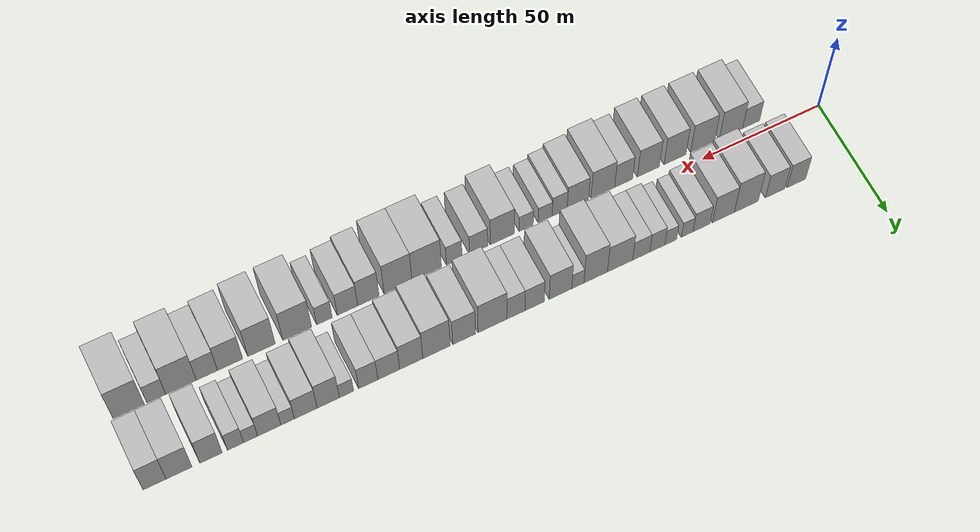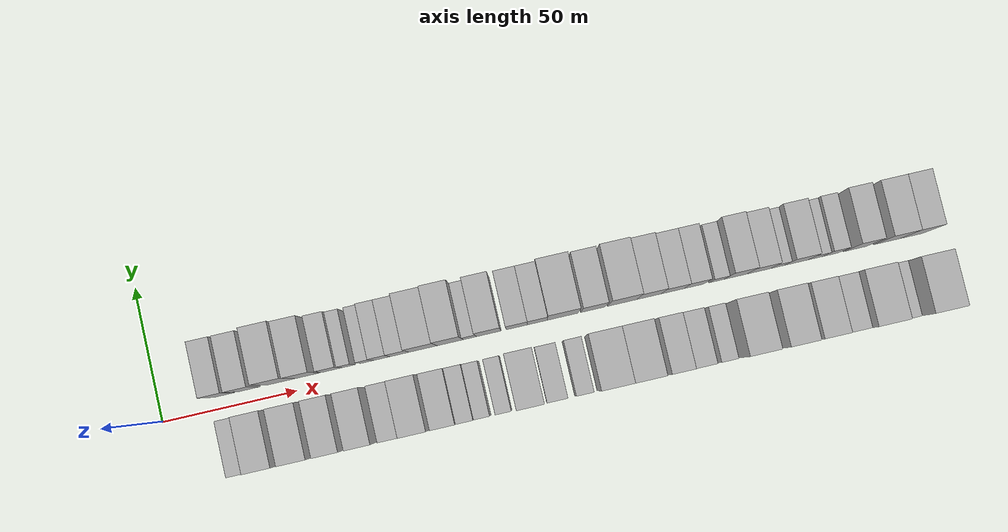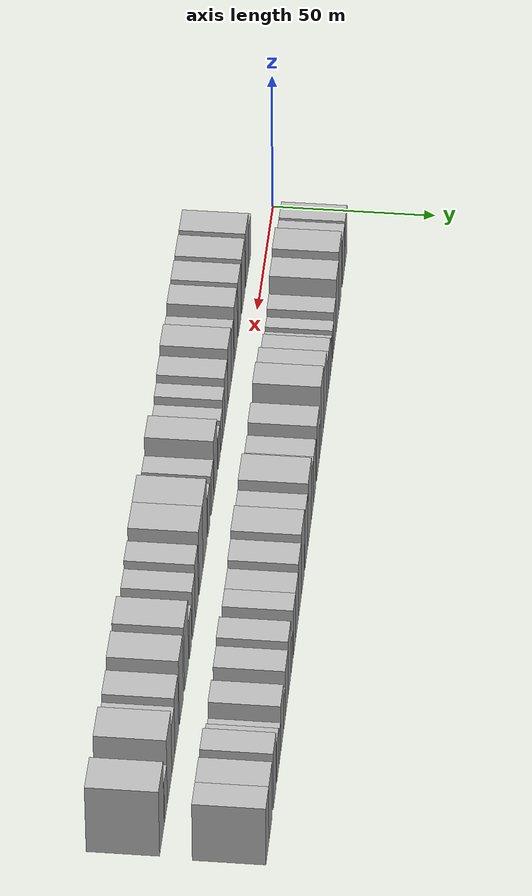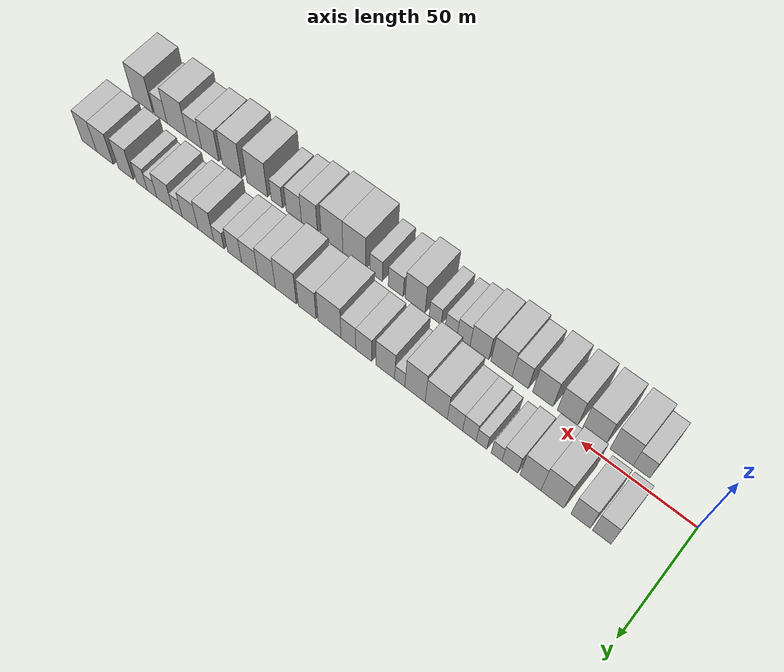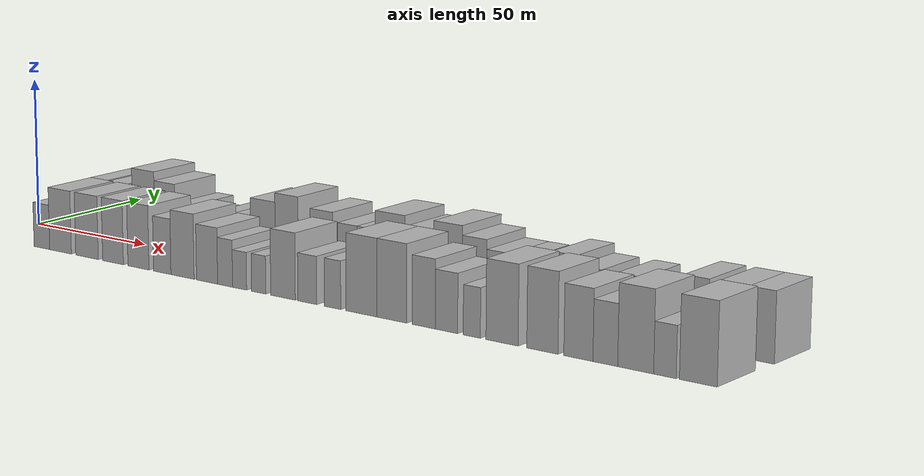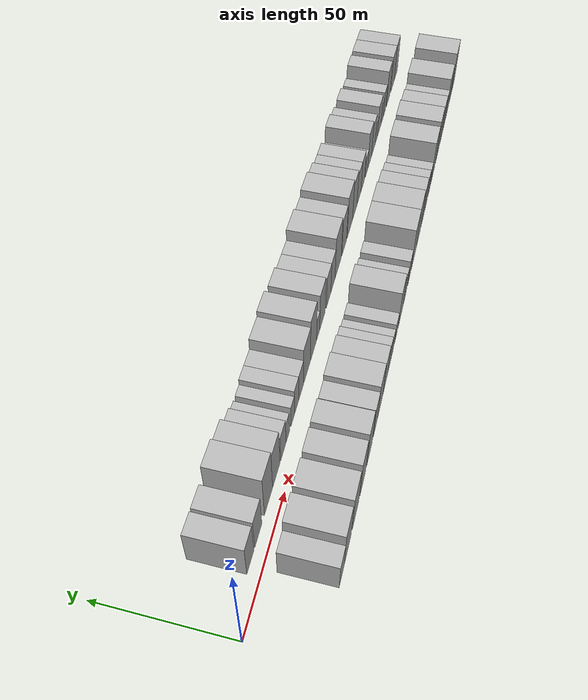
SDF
<sdf version="1.6">
 <world name="default">
  <scene>
   <sky><clouds><speed>12</speed></clouds></sky>
   <ambient>0.4 0.4 0.4 1</ambient>
   <background>0.7 0.7 0.7 1</background>
   <shadows>1</shadows>
  </scene>
  <gravity>0 0 -9.8066</gravity>
  <magnetic_field>6e-06 2.3e-05 -4.2e-05</magnetic_field>
  <physics default="0" name="default_physics" type="ode">
   <ode>
    <solver>
     <type>quick</type>
     <iters>10</iters>
     <sor>1.0</sor>
     <use_dynamic_moi_rescaling>0</use_dynamic_moi_rescaling>
    </solver>
    <constraints>
     <cfm>0</cfm>
     <erp>0.2</erp>
     <contact_max_correcting_vel>100</contact_max_correcting_vel>
     <contact_surface_layer>0.001</contact_surface_layer>
    </constraints>
   </ode>
   <max_step_size>0.004</max_step_size>
   <real_time_factor>1</real_time_factor>
   <real_time_update_rate>250</real_time_update_rate>
  </physics>
  <light name="sun" type="directional">
   <pose>0 0 10 0 0 0</pose>
   <diffuse>0.8 0.8 0.8 1</diffuse>
   <specular>0.2 0.2 0.2 1</specular>
   <attenuation>
    <range>1000</range>
    <constant>0.9</constant>
    <linear>0.01</linear>
    <quadratic>0.001</quadratic>
   </attenuation>
   <direction>-0.5 0.1 -0.9</direction>
  </light>
  <model name="building_1">
   <static>1</static>
   <pose>23.9567 14.5000 0 0.000000 0.000000 1.570796</pose>
   <link name="link">
    <pose>0 0 9.00 0 0 0</pose>
    <collision name="collision"><geometry><box><size>20.0000 7.9134 18.0000</size></box></geometry></collision>
    <visual name="visual">
     <cast_shadows>0</cast_shadows>
     <geometry><box><size>20.0000 7.9134 18.0000</size></box></geometry>
     <material>
      <script>
       <uri>model://HANNAS_wall/materials/scripts</uri>
       <uri>model://HANNAS_wall/materials/textures</uri>
       <name>vrc/HANNAS_wall</name>
      </script>
     </material>
    </visual>
   </link>
  </model>
  <model name="building_2">
   <static>1</static>
   <pose>33.0649 14.5000 0 0.000000 0.000000 1.570796</pose>
   <link name="link">
    <pose>0 0 9.00 0 0 0</pose>
    <collision name="collision"><geometry><box><size>20.0000 8.3031 18.0000</size></box></geometry></collision>
    <visual name="visual">
     <cast_shadows>0</cast_shadows>
     <geometry><box><size>20.0000 8.3031 18.0000</size></box></geometry>
     <material>
      <script>
       <uri>model://HANNAS_wall/materials/scripts</uri>
       <uri>model://HANNAS_wall/materials/textures</uri>
       <name>vrc/HANNAS_wall</name>
      </script>
     </material>
    </visual>
   </link>
  </model>
  <model name="building_3">
   <static>1</static>
   <pose>45.2926 14.5000 0 0.000000 0.000000 1.570796</pose>
   <link name="link">
    <pose>0 0 12.00 0 0 0</pose>
    <collision name="collision"><geometry><box><size>20.0000 10.1522 24.0000</size></box></geometry></collision>
    <visual name="visual">
     <cast_shadows>0</cast_shadows>
     <geometry><box><size>20.0000 10.1522 24.0000</size></box></geometry>
     <material>
      <script>
       <uri>model://HANNAS_wall/materials/scripts</uri>
       <uri>model://HANNAS_wall/materials/textures</uri>
       <name>vrc/HANNAS_wall</name>
      </script>
     </material>
    </visual>
   </link>
  </model>
  <model name="building_4">
   <static>1</static>
   <pose>55.0081 14.5000 0 0.000000 0.000000 1.570796</pose>
   <link name="link">
    <pose>0 0 10.50 0 0 0</pose>
    <collision name="collision"><geometry><box><size>20.0000 9.2788 21.0000</size></box></geometry></collision>
    <visual name="visual">
     <cast_shadows>0</cast_shadows>
     <geometry><box><size>20.0000 9.2788 21.0000</size></box></geometry>
     <material>
      <script>
       <uri>model://HANNAS_wall/materials/scripts</uri>
       <uri>model://HANNAS_wall/materials/textures</uri>
       <name>vrc/HANNAS_wall</name>
      </script>
     </material>
    </visual>
   </link>
  </model>
  <model name="building_5">
   <static>1</static>
   <pose>64.2065 14.5000 0 0.000000 0.000000 1.570796</pose>
   <link name="link">
    <pose>0 0 7.50 0 0 0</pose>
    <collision name="collision"><geometry><box><size>20.0000 7.1180 15.0000</size></box></geometry></collision>
    <visual name="visual">
     <cast_shadows>0</cast_shadows>
     <geometry><box><size>20.0000 7.1180 15.0000</size></box></geometry>
     <material>
      <script>
       <uri>model://HANNAS_wall/materials/scripts</uri>
       <uri>model://HANNAS_wall/materials/textures</uri>
       <name>vrc/HANNAS_wall</name>
      </script>
     </material>
    </visual>
   </link>
  </model>
  <model name="building_6">
   <static>1</static>
   <pose>70.2056 14.5000 0 0.000000 0.000000 1.570796</pose>
   <link name="link">
    <pose>0 0 6.00 0 0 0</pose>
    <collision name="collision"><geometry><box><size>20.0000 4.8802 12.0000</size></box></geometry></collision>
    <visual name="visual">
     <cast_shadows>0</cast_shadows>
     <geometry><box><size>20.0000 4.8802 12.0000</size></box></geometry>
     <material>
      <script>
       <uri>model://HANNAS_wall/materials/scripts</uri>
       <uri>model://HANNAS_wall/materials/textures</uri>
       <name>vrc/HANNAS_wall</name>
      </script>
     </material>
    </visual>
   </link>
  </model>
  <model name="building_7">
   <static>1</static>
   <pose>77.0890 14.5000 0 0.000000 0.000000 1.570796</pose>
   <link name="link">
    <pose>0 0 6.00 0 0 0</pose>
    <collision name="collision"><geometry><box><size>20.0000 4.8866 12.0000</size></box></geometry></collision>
    <visual name="visual">
     <cast_shadows>0</cast_shadows>
     <geometry><box><size>20.0000 4.8866 12.0000</size></box></geometry>
     <material>
      <script>
       <uri>model://HANNAS_wall/materials/scripts</uri>
       <uri>model://HANNAS_wall/materials/textures</uri>
       <name>vrc/HANNAS_wall</name>
      </script>
     </material>
    </visual>
   </link>
  </model>
  <model name="building_8">
   <static>1</static>
   <pose>82.6566 14.5000 0 0.000000 0.000000 1.570796</pose>
   <link name="link">
    <pose>0 0 7.50 0 0 0</pose>
    <collision name="collision"><geometry><box><size>20.0000 6.2487 15.0000</size></box></geometry></collision>
    <visual name="visual">
     <cast_shadows>0</cast_shadows>
     <geometry><box><size>20.0000 6.2487 15.0000</size></box></geometry>
     <material>
      <script>
       <uri>model://HANNAS_wall/materials/scripts</uri>
       <uri>model://HANNAS_wall/materials/textures</uri>
       <name>vrc/HANNAS_wall</name>
      </script>
     </material>
    </visual>
   </link>
  </model>
  <model name="building_9">
   <static>1</static>
   <pose>89.3474 14.5000 0 0.000000 0.000000 1.570796</pose>
   <link name="link">
    <pose>0 0 7.50 0 0 0</pose>
    <collision name="collision"><geometry><box><size>20.0000 7.1328 15.0000</size></box></geometry></collision>
    <visual name="visual">
     <cast_shadows>0</cast_shadows>
     <geometry><box><size>20.0000 7.1328 15.0000</size></box></geometry>
     <material>
      <script>
       <uri>model://HANNAS_wall/materials/scripts</uri>
       <uri>model://HANNAS_wall/materials/textures</uri>
       <name>vrc/HANNAS_wall</name>
      </script>
     </material>
    </visual>
   </link>
  </model>
  <model name="building_10">
   <static>1</static>
   <pose>98.1227 14.5000 0 0.000000 0.000000 1.570796</pose>
   <link name="link">
    <pose>0 0 10.50 0 0 0</pose>
    <collision name="collision"><geometry><box><size>20.0000 10.4180 21.0000</size></box></geometry></collision>
    <visual name="visual">
     <cast_shadows>0</cast_shadows>
     <geometry><box><size>20.0000 10.4180 21.0000</size></box></geometry>
     <material>
      <script>
       <uri>model://HANNAS_wall/materials/scripts</uri>
       <uri>model://HANNAS_wall/materials/textures</uri>
       <name>vrc/HANNAS_wall</name>
      </script>
     </material>
    </visual>
   </link>
  </model>
  <model name="building_11">
   <static>1</static>
   <pose>108.1672 14.5000 0 0.000000 0.000000 1.570796</pose>
   <link name="link">
    <pose>0 0 12.00 0 0 0</pose>
    <collision name="collision"><geometry><box><size>20.0000 9.6710 24.0000</size></box></geometry></collision>
    <visual name="visual">
     <cast_shadows>0</cast_shadows>
     <geometry><box><size>20.0000 9.6710 24.0000</size></box></geometry>
     <material>
      <script>
       <uri>model://HANNAS_wall/materials/scripts</uri>
       <uri>model://HANNAS_wall/materials/textures</uri>
       <name>vrc/HANNAS_wall</name>
      </script>
     </material>
    </visual>
   </link>
  </model>
  <model name="building_12">
   <static>1</static>
   <pose>115.4831 14.5000 0 0.000000 0.000000 1.570796</pose>
   <link name="link">
    <pose>0 0 6.00 0 0 0</pose>
    <collision name="collision"><geometry><box><size>20.0000 4.9609 12.0000</size></box></geometry></collision>
    <visual name="visual">
     <cast_shadows>0</cast_shadows>
     <geometry><box><size>20.0000 4.9609 12.0000</size></box></geometry>
     <material>
      <script>
       <uri>model://HANNAS_wall/materials/scripts</uri>
       <uri>model://HANNAS_wall/materials/textures</uri>
       <name>vrc/HANNAS_wall</name>
      </script>
     </material>
    </visual>
   </link>
  </model>
  <model name="building_13">
   <static>1</static>
   <pose>122.5695 14.5000 0 0.000000 0.000000 1.570796</pose>
   <link name="link">
    <pose>0 0 10.50 0 0 0</pose>
    <collision name="collision"><geometry><box><size>20.0000 9.2118 21.0000</size></box></geometry></collision>
    <visual name="visual">
     <cast_shadows>0</cast_shadows>
     <geometry><box><size>20.0000 9.2118 21.0000</size></box></geometry>
     <material>
      <script>
       <uri>model://HANNAS_wall/materials/scripts</uri>
       <uri>model://HANNAS_wall/materials/textures</uri>
       <name>vrc/HANNAS_wall</name>
      </script>
     </material>
    </visual>
   </link>
  </model>
  <model name="building_14">
   <static>1</static>
   <pose>133.0898 14.5000 0 0.000000 0.000000 1.570796</pose>
   <link name="link">
    <pose>0 0 9.00 0 0 0</pose>
    <collision name="collision"><geometry><box><size>20.0000 7.8289 18.0000</size></box></geometry></collision>
    <visual name="visual">
     <cast_shadows>0</cast_shadows>
     <geometry><box><size>20.0000 7.8289 18.0000</size></box></geometry>
     <material>
      <script>
       <uri>model://HANNAS_wall/materials/scripts</uri>
       <uri>model://HANNAS_wall/materials/textures</uri>
       <name>vrc/HANNAS_wall</name>
      </script>
     </material>
    </visual>
   </link>
  </model>
  <model name="building_15">
   <static>1</static>
   <pose>140.6729 14.5000 0 0.000000 0.000000 1.570796</pose>
   <link name="link">
    <pose>0 0 9.00 0 0 0</pose>
    <collision name="collision"><geometry><box><size>20.0000 7.3372 18.0000</size></box></geometry></collision>
    <visual name="visual">
     <cast_shadows>0</cast_shadows>
     <geometry><box><size>20.0000 7.3372 18.0000</size></box></geometry>
     <material>
      <script>
       <uri>model://HANNAS_wall/materials/scripts</uri>
       <uri>model://HANNAS_wall/materials/textures</uri>
       <name>vrc/HANNAS_wall</name>
      </script>
     </material>
    </visual>
   </link>
  </model>
  <model name="building_16">
   <static>1</static>
   <pose>150.1313 14.5000 0 0.000000 0.000000 1.570796</pose>
   <link name="link">
    <pose>0 0 12.00 0 0 0</pose>
    <collision name="collision"><geometry><box><size>20.0000 11.5796 24.0000</size></box></geometry></collision>
    <visual name="visual">
     <cast_shadows>0</cast_shadows>
     <geometry><box><size>20.0000 11.5796 24.0000</size></box></geometry>
     <material>
      <script>
       <uri>model://HANNAS_wall/materials/scripts</uri>
       <uri>model://HANNAS_wall/materials/textures</uri>
       <name>vrc/HANNAS_wall</name>
      </script>
     </material>
    </visual>
   </link>
  </model>
  <model name="building_17">
   <static>1</static>
   <pose>161.4761 14.5000 0 0.000000 0.000000 1.570796</pose>
   <link name="link">
    <pose>0 0 10.50 0 0 0</pose>
    <collision name="collision"><geometry><box><size>20.0000 9.1101 21.0000</size></box></geometry></collision>
    <visual name="visual">
     <cast_shadows>0</cast_shadows>
     <geometry><box><size>20.0000 9.1101 21.0000</size></box></geometry>
     <material>
      <script>
       <uri>model://HANNAS_wall/materials/scripts</uri>
       <uri>model://HANNAS_wall/materials/textures</uri>
       <name>vrc/HANNAS_wall</name>
      </script>
     </material>
    </visual>
   </link>
  </model>
  <model name="building_18">
   <static>1</static>
   <pose>172.4887 14.5000 0 0.000000 0.000000 1.570796</pose>
   <link name="link">
    <pose>0 0 12.00 0 0 0</pose>
    <collision name="collision"><geometry><box><size>20.0000 10.9151 24.0000</size></box></geometry></collision>
    <visual name="visual">
     <cast_shadows>0</cast_shadows>
     <geometry><box><size>20.0000 10.9151 24.0000</size></box></geometry>
     <material>
      <script>
       <uri>model://HANNAS_wall/materials/scripts</uri>
       <uri>model://HANNAS_wall/materials/textures</uri>
       <name>vrc/HANNAS_wall</name>
      </script>
     </material>
    </visual>
   </link>
  </model>
  <model name="building_19">
   <static>1</static>
   <pose>182.5299 14.5000 0 0.000000 0.000000 1.570796</pose>
   <link name="link">
    <pose>0 0 10.50 0 0 0</pose>
    <collision name="collision"><geometry><box><size>20.0000 9.1673 21.0000</size></box></geometry></collision>
    <visual name="visual">
     <cast_shadows>0</cast_shadows>
     <geometry><box><size>20.0000 9.1673 21.0000</size></box></geometry>
     <material>
      <script>
       <uri>model://HANNAS_wall/materials/scripts</uri>
       <uri>model://HANNAS_wall/materials/textures</uri>
       <name>vrc/HANNAS_wall</name>
      </script>
     </material>
    </visual>
   </link>
  </model>
  <model name="building_20">
   <static>1</static>
   <pose>191.4184 14.5000 0 0.000000 0.000000 1.570796</pose>
   <link name="link">
    <pose>0 0 9.00 0 0 0</pose>
    <collision name="collision"><geometry><box><size>20.0000 8.6097 18.0000</size></box></geometry></collision>
    <visual name="visual">
     <cast_shadows>0</cast_shadows>
     <geometry><box><size>20.0000 8.6097 18.0000</size></box></geometry>
     <material>
      <script>
       <uri>model://HANNAS_wall/materials/scripts</uri>
       <uri>model://HANNAS_wall/materials/textures</uri>
       <name>vrc/HANNAS_wall</name>
      </script>
     </material>
    </visual>
   </link>
  </model>
  <model name="building_21">
   <static>1</static>
   <pose>199.4743 14.5000 0 0.000000 0.000000 1.570796</pose>
   <link name="link">
    <pose>0 0 9.00 0 0 0</pose>
    <collision name="collision"><geometry><box><size>20.0000 7.5022 18.0000</size></box></geometry></collision>
    <visual name="visual">
     <cast_shadows>0</cast_shadows>
     <geometry><box><size>20.0000 7.5022 18.0000</size></box></geometry>
     <material>
      <script>
       <uri>model://HANNAS_wall/materials/scripts</uri>
       <uri>model://HANNAS_wall/materials/textures</uri>
       <name>vrc/HANNAS_wall</name>
      </script>
     </material>
    </visual>
   </link>
  </model>
  <model name="building_22">
   <static>1</static>
   <pose>207.9939 14.5000 0 0.000000 0.000000 1.570796</pose>
   <link name="link">
    <pose>0 0 6.00 0 0 0</pose>
    <collision name="collision"><geometry><box><size>20.0000 5.5370 12.0000</size></box></geometry></collision>
    <visual name="visual">
     <cast_shadows>0</cast_shadows>
     <geometry><box><size>20.0000 5.5370 12.0000</size></box></geometry>
     <material>
      <script>
       <uri>model://HANNAS_wall/materials/scripts</uri>
       <uri>model://HANNAS_wall/materials/textures</uri>
       <name>vrc/HANNAS_wall</name>
      </script>
     </material>
    </visual>
   </link>
  </model>
  <model name="building_23">
   <static>1</static>
   <pose>215.0851 14.5000 0 0.000000 0.000000 1.570796</pose>
   <link name="link">
    <pose>0 0 10.50 0 0 0</pose>
    <collision name="collision"><geometry><box><size>20.0000 8.6453 21.0000</size></box></geometry></collision>
    <visual name="visual">
     <cast_shadows>0</cast_shadows>
     <geometry><box><size>20.0000 8.6453 21.0000</size></box></geometry>
     <material>
      <script>
       <uri>model://HANNAS_wall/materials/scripts</uri>
       <uri>model://HANNAS_wall/materials/textures</uri>
       <name>vrc/HANNAS_wall</name>
      </script>
     </material>
    </visual>
   </link>
  </model>
  <model name="building_24">
   <static>1</static>
   <pose>223.8281 14.5000 0 0.000000 0.000000 1.570796</pose>
   <link name="link">
    <pose>0 0 9.00 0 0 0</pose>
    <collision name="collision"><geometry><box><size>20.0000 8.8406 18.0000</size></box></geometry></collision>
    <visual name="visual">
     <cast_shadows>0</cast_shadows>
     <geometry><box><size>20.0000 8.8406 18.0000</size></box></geometry>
     <material>
      <script>
       <uri>model://HANNAS_wall/materials/scripts</uri>
       <uri>model://HANNAS_wall/materials/textures</uri>
       <name>vrc/HANNAS_wall</name>
      </script>
     </material>
    </visual>
   </link>
  </model>
  <model name="building_25">
   <static>1</static>
   <pose>230.8523 14.5000 0 0.000000 0.000000 1.570796</pose>
   <link name="link">
    <pose>0 0 6.00 0 0 0</pose>
    <collision name="collision"><geometry><box><size>20.0000 5.2079 12.0000</size></box></geometry></collision>
    <visual name="visual">
     <cast_shadows>0</cast_shadows>
     <geometry><box><size>20.0000 5.2079 12.0000</size></box></geometry>
     <material>
      <script>
       <uri>model://HANNAS_wall/materials/scripts</uri>
       <uri>model://HANNAS_wall/materials/textures</uri>
       <name>vrc/HANNAS_wall</name>
      </script>
     </material>
    </visual>
   </link>
  </model>
  <model name="building_26">
   <static>1</static>
   <pose>237.9492 14.5000 0 0.000000 0.000000 1.570796</pose>
   <link name="link">
    <pose>0 0 9.00 0 0 0</pose>
    <collision name="collision"><geometry><box><size>20.0000 8.9858 18.0000</size></box></geometry></collision>
    <visual name="visual">
     <cast_shadows>0</cast_shadows>
     <geometry><box><size>20.0000 8.9858 18.0000</size></box></geometry>
     <material>
      <script>
       <uri>model://HANNAS_wall/materials/scripts</uri>
       <uri>model://HANNAS_wall/materials/textures</uri>
       <name>vrc/HANNAS_wall</name>
      </script>
     </material>
    </visual>
   </link>
  </model>
  <model name="building_27">
   <static>1</static>
   <pose>245.1500 14.5000 0 0.000000 0.000000 1.570796</pose>
   <link name="link">
    <pose>0 0 6.00 0 0 0</pose>
    <collision name="collision"><geometry><box><size>20.0000 5.4158 12.0000</size></box></geometry></collision>
    <visual name="visual">
     <cast_shadows>0</cast_shadows>
     <geometry><box><size>20.0000 5.4158 12.0000</size></box></geometry>
     <material>
      <script>
       <uri>model://HANNAS_wall/materials/scripts</uri>
       <uri>model://HANNAS_wall/materials/textures</uri>
       <name>vrc/HANNAS_wall</name>
      </script>
     </material>
    </visual>
   </link>
  </model>
  <model name="building_28">
   <static>1</static>
   <pose>250.9206 14.5000 0 0.000000 0.000000 1.570796</pose>
   <link name="link">
    <pose>0 0 7.50 0 0 0</pose>
    <collision name="collision"><geometry><box><size>20.0000 6.1256 15.0000</size></box></geometry></collision>
    <visual name="visual">
     <cast_shadows>0</cast_shadows>
     <geometry><box><size>20.0000 6.1256 15.0000</size></box></geometry>
     <material>
      <script>
       <uri>model://HANNAS_wall/materials/scripts</uri>
       <uri>model://HANNAS_wall/materials/textures</uri>
       <name>vrc/HANNAS_wall</name>
      </script>
     </material>
    </visual>
   </link>
  </model>
  <model name="building_29">
   <static>1</static>
   <pose>260.2437 14.5000 0 0.000000 0.000000 1.570796</pose>
   <link name="link">
    <pose>0 0 10.50 0 0 0</pose>
    <collision name="collision"><geometry><box><size>20.0000 8.5206 21.0000</size></box></geometry></collision>
    <visual name="visual">
     <cast_shadows>0</cast_shadows>
     <geometry><box><size>20.0000 8.5206 21.0000</size></box></geometry>
     <material>
      <script>
       <uri>model://HANNAS_wall/materials/scripts</uri>
       <uri>model://HANNAS_wall/materials/textures</uri>
       <name>vrc/HANNAS_wall</name>
      </script>
     </material>
    </visual>
   </link>
  </model>
  <model name="building_30">
   <static>1</static>
   <pose>272.3866 14.5000 0 0.000000 0.000000 1.570796</pose>
   <link name="link">
    <pose>0 0 10.50 0 0 0</pose>
    <collision name="collision"><geometry><box><size>20.0000 9.7652 21.0000</size></box></geometry></collision>
    <visual name="visual">
     <cast_shadows>0</cast_shadows>
     <geometry><box><size>20.0000 9.7652 21.0000</size></box></geometry>
     <material>
      <script>
       <uri>model://HANNAS_wall/materials/scripts</uri>
       <uri>model://HANNAS_wall/materials/textures</uri>
       <name>vrc/HANNAS_wall</name>
      </script>
     </material>
    </visual>
   </link>
  </model>
  <model name="building_31">
   <static>1</static>
   <pose>281.6201 14.5000 0 0.000000 0.000000 1.570796</pose>
   <link name="link">
    <pose>0 0 10.50 0 0 0</pose>
    <collision name="collision"><geometry><box><size>20.0000 8.7017 21.0000</size></box></geometry></collision>
    <visual name="visual">
     <cast_shadows>0</cast_shadows>
     <geometry><box><size>20.0000 8.7017 21.0000</size></box></geometry>
     <material>
      <script>
       <uri>model://HANNAS_wall/materials/scripts</uri>
       <uri>model://HANNAS_wall/materials/textures</uri>
       <name>vrc/HANNAS_wall</name>
      </script>
     </material>
    </visual>
   </link>
  </model>
  <model name="building_32">
   <static>1</static>
   <pose>26.6646 -14.5000 0 0.000000 0.000000 1.570796</pose>
   <link name="link">
    <pose>0 0 7.50 0 0 0</pose>
    <collision name="collision"><geometry><box><size>20.0000 7.3291 15.0000</size></box></geometry></collision>
    <visual name="visual">
     <cast_shadows>0</cast_shadows>
     <geometry><box><size>20.0000 7.3291 15.0000</size></box></geometry>
     <material>
      <script>
       <uri>model://HANNAS_wall/materials/scripts</uri>
       <uri>model://HANNAS_wall/materials/textures</uri>
       <name>vrc/HANNAS_wall</name>
      </script>
     </material>
    </visual>
   </link>
  </model>
  <model name="building_33">
   <static>1</static>
   <pose>35.3619 -14.5000 0 0.000000 0.000000 1.570796</pose>
   <link name="link">
    <pose>0 0 10.50 0 0 0</pose>
    <collision name="collision"><geometry><box><size>20.0000 10.0655 21.0000</size></box></geometry></collision>
    <visual name="visual">
     <cast_shadows>0</cast_shadows>
     <geometry><box><size>20.0000 10.0655 21.0000</size></box></geometry>
     <material>
      <script>
       <uri>model://HANNAS_wall/materials/scripts</uri>
       <uri>model://HANNAS_wall/materials/textures</uri>
       <name>vrc/HANNAS_wall</name>
      </script>
     </material>
    </visual>
   </link>
  </model>
  <model name="building_34">
   <static>1</static>
   <pose>47.5287 -14.5000 0 0.000000 0.000000 1.570796</pose>
   <link name="link">
    <pose>0 0 10.50 0 0 0</pose>
    <collision name="collision"><geometry><box><size>20.0000 10.2680 21.0000</size></box></geometry></collision>
    <visual name="visual">
     <cast_shadows>0</cast_shadows>
     <geometry><box><size>20.0000 10.2680 21.0000</size></box></geometry>
     <material>
      <script>
       <uri>model://HANNAS_wall/materials/scripts</uri>
       <uri>model://HANNAS_wall/materials/textures</uri>
       <name>vrc/HANNAS_wall</name>
      </script>
     </material>
    </visual>
   </link>
  </model>
  <model name="building_35">
   <static>1</static>
   <pose>59.3151 -14.5000 0 0.000000 0.000000 1.570796</pose>
   <link name="link">
    <pose>0 0 10.50 0 0 0</pose>
    <collision name="collision"><geometry><box><size>20.0000 9.3049 21.0000</size></box></geometry></collision>
    <visual name="visual">
     <cast_shadows>0</cast_shadows>
     <geometry><box><size>20.0000 9.3049 21.0000</size></box></geometry>
     <material>
      <script>
       <uri>model://HANNAS_wall/materials/scripts</uri>
       <uri>model://HANNAS_wall/materials/textures</uri>
       <name>vrc/HANNAS_wall</name>
      </script>
     </material>
    </visual>
   </link>
  </model>
  <model name="building_36">
   <static>1</static>
   <pose>70.6102 -14.5000 0 0.000000 0.000000 1.570796</pose>
   <link name="link">
    <pose>0 0 10.50 0 0 0</pose>
    <collision name="collision"><geometry><box><size>20.0000 9.2851 21.0000</size></box></geometry></collision>
    <visual name="visual">
     <cast_shadows>0</cast_shadows>
     <geometry><box><size>20.0000 9.2851 21.0000</size></box></geometry>
     <material>
      <script>
       <uri>model://HANNAS_wall/materials/scripts</uri>
       <uri>model://HANNAS_wall/materials/textures</uri>
       <name>vrc/HANNAS_wall</name>
      </script>
     </material>
    </visual>
   </link>
  </model>
  <model name="building_37">
   <static>1</static>
   <pose>81.0220 -14.5000 0 0.000000 0.000000 1.570796</pose>
   <link name="link">
    <pose>0 0 9.00 0 0 0</pose>
    <collision name="collision"><geometry><box><size>20.0000 7.5385 18.0000</size></box></geometry></collision>
    <visual name="visual">
     <cast_shadows>0</cast_shadows>
     <geometry><box><size>20.0000 7.5385 18.0000</size></box></geometry>
     <material>
      <script>
       <uri>model://HANNAS_wall/materials/scripts</uri>
       <uri>model://HANNAS_wall/materials/textures</uri>
       <name>vrc/HANNAS_wall</name>
      </script>
     </material>
    </visual>
   </link>
  </model>
  <model name="building_38">
   <static>1</static>
   <pose>89.7618 -14.5000 0 0.000000 0.000000 1.570796</pose>
   <link name="link">
    <pose>0 0 10.50 0 0 0</pose>
    <collision name="collision"><geometry><box><size>20.0000 9.9412 21.0000</size></box></geometry></collision>
    <visual name="visual">
     <cast_shadows>0</cast_shadows>
     <geometry><box><size>20.0000 9.9412 21.0000</size></box></geometry>
     <material>
      <script>
       <uri>model://HANNAS_wall/materials/scripts</uri>
       <uri>model://HANNAS_wall/materials/textures</uri>
       <name>vrc/HANNAS_wall</name>
      </script>
     </material>
    </visual>
   </link>
  </model>
  <model name="building_39">
   <static>1</static>
   <pose>100.1844 -14.5000 0 0.000000 0.000000 1.570796</pose>
   <link name="link">
    <pose>0 0 9.00 0 0 0</pose>
    <collision name="collision"><geometry><box><size>20.0000 8.9040 18.0000</size></box></geometry></collision>
    <visual name="visual">
     <cast_shadows>0</cast_shadows>
     <geometry><box><size>20.0000 8.9040 18.0000</size></box></geometry>
     <material>
      <script>
       <uri>model://HANNAS_wall/materials/scripts</uri>
       <uri>model://HANNAS_wall/materials/textures</uri>
       <name>vrc/HANNAS_wall</name>
      </script>
     </material>
    </visual>
   </link>
  </model>
  <model name="building_40">
   <static>1</static>
   <pose>107.7584 -14.5000 0 0.000000 0.000000 1.570796</pose>
   <link name="link">
    <pose>0 0 7.50 0 0 0</pose>
    <collision name="collision"><geometry><box><size>20.0000 6.2442 15.0000</size></box></geometry></collision>
    <visual name="visual">
     <cast_shadows>0</cast_shadows>
     <geometry><box><size>20.0000 6.2442 15.0000</size></box></geometry>
     <material>
      <script>
       <uri>model://HANNAS_wall/materials/scripts</uri>
       <uri>model://HANNAS_wall/materials/textures</uri>
       <name>vrc/HANNAS_wall</name>
      </script>
     </material>
    </visual>
   </link>
  </model>
  <model name="building_41">
   <static>1</static>
   <pose>113.7877 -14.5000 0 0.000000 0.000000 1.570796</pose>
   <link name="link">
    <pose>0 0 6.00 0 0 0</pose>
    <collision name="collision"><geometry><box><size>20.0000 5.8143 12.0000</size></box></geometry></collision>
    <visual name="visual">
     <cast_shadows>0</cast_shadows>
     <geometry><box><size>20.0000 5.8143 12.0000</size></box></geometry>
     <material>
      <script>
       <uri>model://HANNAS_wall/materials/scripts</uri>
       <uri>model://HANNAS_wall/materials/textures</uri>
       <name>vrc/HANNAS_wall</name>
      </script>
     </material>
    </visual>
   </link>
  </model>
  <model name="building_42">
   <static>1</static>
   <pose>121.6024 -14.5000 0 0.000000 0.000000 1.570796</pose>
   <link name="link">
    <pose>0 0 6.00 0 0 0</pose>
    <collision name="collision"><geometry><box><size>20.0000 5.8152 12.0000</size></box></geometry></collision>
    <visual name="visual">
     <cast_shadows>0</cast_shadows>
     <geometry><box><size>20.0000 5.8152 12.0000</size></box></geometry>
     <material>
      <script>
       <uri>model://HANNAS_wall/materials/scripts</uri>
       <uri>model://HANNAS_wall/materials/textures</uri>
       <name>vrc/HANNAS_wall</name>
      </script>
     </material>
    </visual>
   </link>
  </model>
  <model name="building_43">
   <static>1</static>
   <pose>131.4574 -14.5000 0 0.000000 0.000000 1.570796</pose>
   <link name="link">
    <pose>0 0 10.50 0 0 0</pose>
    <collision name="collision"><geometry><box><size>20.0000 9.8949 21.0000</size></box></geometry></collision>
    <visual name="visual">
     <cast_shadows>0</cast_shadows>
     <geometry><box><size>20.0000 9.8949 21.0000</size></box></geometry>
     <material>
      <script>
       <uri>model://HANNAS_wall/materials/scripts</uri>
       <uri>model://HANNAS_wall/materials/textures</uri>
       <name>vrc/HANNAS_wall</name>
      </script>
     </material>
    </visual>
   </link>
  </model>
  <model name="building_44">
   <static>1</static>
   <pose>141.1470 -14.5000 0 0.000000 0.000000 1.570796</pose>
   <link name="link">
    <pose>0 0 7.50 0 0 0</pose>
    <collision name="collision"><geometry><box><size>20.0000 7.4842 15.0000</size></box></geometry></collision>
    <visual name="visual">
     <cast_shadows>0</cast_shadows>
     <geometry><box><size>20.0000 7.4842 15.0000</size></box></geometry>
     <material>
      <script>
       <uri>model://HANNAS_wall/materials/scripts</uri>
       <uri>model://HANNAS_wall/materials/textures</uri>
       <name>vrc/HANNAS_wall</name>
      </script>
     </material>
    </visual>
   </link>
  </model>
  <model name="building_45">
   <static>1</static>
   <pose>151.0759 -14.5000 0 0.000000 0.000000 1.570796</pose>
   <link name="link">
    <pose>0 0 7.50 0 0 0</pose>
    <collision name="collision"><geometry><box><size>20.0000 6.3737 15.0000</size></box></geometry></collision>
    <visual name="visual">
     <cast_shadows>0</cast_shadows>
     <geometry><box><size>20.0000 6.3737 15.0000</size></box></geometry>
     <material>
      <script>
       <uri>model://HANNAS_wall/materials/scripts</uri>
       <uri>model://HANNAS_wall/materials/textures</uri>
       <name>vrc/HANNAS_wall</name>
      </script>
     </material>
    </visual>
   </link>
  </model>
  <model name="building_46">
   <static>1</static>
   <pose>162.2047 -14.5000 0 0.000000 0.000000 1.570796</pose>
   <link name="link">
    <pose>0 0 12.00 0 0 0</pose>
    <collision name="collision"><geometry><box><size>20.0000 11.8839 24.0000</size></box></geometry></collision>
    <visual name="visual">
     <cast_shadows>0</cast_shadows>
     <geometry><box><size>20.0000 11.8839 24.0000</size></box></geometry>
     <material>
      <script>
       <uri>model://HANNAS_wall/materials/scripts</uri>
       <uri>model://HANNAS_wall/materials/textures</uri>
       <name>vrc/HANNAS_wall</name>
      </script>
     </material>
    </visual>
   </link>
  </model>
  <model name="building_47">
   <static>1</static>
   <pose>173.7663 -14.5000 0 0.000000 0.000000 1.570796</pose>
   <link name="link">
    <pose>0 0 12.00 0 0 0</pose>
    <collision name="collision"><geometry><box><size>20.0000 11.2392 24.0000</size></box></geometry></collision>
    <visual name="visual">
     <cast_shadows>0</cast_shadows>
     <geometry><box><size>20.0000 11.2392 24.0000</size></box></geometry>
     <material>
      <script>
       <uri>model://HANNAS_wall/materials/scripts</uri>
       <uri>model://HANNAS_wall/materials/textures</uri>
       <name>vrc/HANNAS_wall</name>
      </script>
     </material>
    </visual>
   </link>
  </model>
  <model name="building_48">
   <static>1</static>
   <pose>185.6516 -14.5000 0 0.000000 0.000000 1.570796</pose>
   <link name="link">
    <pose>0 0 10.50 0 0 0</pose>
    <collision name="collision"><geometry><box><size>20.0000 8.5313 21.0000</size></box></geometry></collision>
    <visual name="visual">
     <cast_shadows>0</cast_shadows>
     <geometry><box><size>20.0000 8.5313 21.0000</size></box></geometry>
     <material>
      <script>
       <uri>model://HANNAS_wall/materials/scripts</uri>
       <uri>model://HANNAS_wall/materials/textures</uri>
       <name>vrc/HANNAS_wall</name>
      </script>
     </material>
    </visual>
   </link>
  </model>
  <model name="building_49">
   <static>1</static>
   <pose>193.9821 -14.5000 0 0.000000 0.000000 1.570796</pose>
   <link name="link">
    <pose>0 0 9.00 0 0 0</pose>
    <collision name="collision"><geometry><box><size>20.0000 8.1296 18.0000</size></box></geometry></collision>
    <visual name="visual">
     <cast_shadows>0</cast_shadows>
     <geometry><box><size>20.0000 8.1296 18.0000</size></box></geometry>
     <material>
      <script>
       <uri>model://HANNAS_wall/materials/scripts</uri>
       <uri>model://HANNAS_wall/materials/textures</uri>
       <name>vrc/HANNAS_wall</name>
      </script>
     </material>
    </visual>
   </link>
  </model>
  <model name="building_50">
   <static>1</static>
   <pose>203.1256 -14.5000 0 0.000000 0.000000 1.570796</pose>
   <link name="link">
    <pose>0 0 7.50 0 0 0</pose>
    <collision name="collision"><geometry><box><size>20.0000 6.1575 15.0000</size></box></geometry></collision>
    <visual name="visual">
     <cast_shadows>0</cast_shadows>
     <geometry><box><size>20.0000 6.1575 15.0000</size></box></geometry>
     <material>
      <script>
       <uri>model://HANNAS_wall/materials/scripts</uri>
       <uri>model://HANNAS_wall/materials/textures</uri>
       <name>vrc/HANNAS_wall</name>
      </script>
     </material>
    </visual>
   </link>
  </model>
  <model name="building_51">
   <static>1</static>
   <pose>213.8698 -14.5000 0 0.000000 0.000000 1.570796</pose>
   <link name="link">
    <pose>0 0 12.00 0 0 0</pose>
    <collision name="collision"><geometry><box><size>20.0000 11.3309 24.0000</size></box></geometry></collision>
    <visual name="visual">
     <cast_shadows>0</cast_shadows>
     <geometry><box><size>20.0000 11.3309 24.0000</size></box></geometry>
     <material>
      <script>
       <uri>model://HANNAS_wall/materials/scripts</uri>
       <uri>model://HANNAS_wall/materials/textures</uri>
       <name>vrc/HANNAS_wall</name>
      </script>
     </material>
    </visual>
   </link>
  </model>
  <model name="building_52">
   <static>1</static>
   <pose>227.9006 -14.5000 0 0.000000 0.000000 1.570796</pose>
   <link name="link">
    <pose>0 0 12.00 0 0 0</pose>
    <collision name="collision"><geometry><box><size>20.0000 10.7307 24.0000</size></box></geometry></collision>
    <visual name="visual">
     <cast_shadows>0</cast_shadows>
     <geometry><box><size>20.0000 10.7307 24.0000</size></box></geometry>
     <material>
      <script>
       <uri>model://HANNAS_wall/materials/scripts</uri>
       <uri>model://HANNAS_wall/materials/textures</uri>
       <name>vrc/HANNAS_wall</name>
      </script>
     </material>
    </visual>
   </link>
  </model>
  <model name="building_53">
   <static>1</static>
   <pose>240.1626 -14.5000 0 0.000000 0.000000 1.570796</pose>
   <link name="link">
    <pose>0 0 10.50 0 0 0</pose>
    <collision name="collision"><geometry><box><size>20.0000 9.7933 21.0000</size></box></geometry></collision>
    <visual name="visual">
     <cast_shadows>0</cast_shadows>
     <geometry><box><size>20.0000 9.7933 21.0000</size></box></geometry>
     <material>
      <script>
       <uri>model://HANNAS_wall/materials/scripts</uri>
       <uri>model://HANNAS_wall/materials/textures</uri>
       <name>vrc/HANNAS_wall</name>
      </script>
     </material>
    </visual>
   </link>
  </model>
  <model name="building_54">
   <static>1</static>
   <pose>249.1737 -14.5000 0 0.000000 0.000000 1.570796</pose>
   <link name="link">
    <pose>0 0 9.00 0 0 0</pose>
    <collision name="collision"><geometry><box><size>20.0000 8.2289 18.0000</size></box></geometry></collision>
    <visual name="visual">
     <cast_shadows>0</cast_shadows>
     <geometry><box><size>20.0000 8.2289 18.0000</size></box></geometry>
     <material>
      <script>
       <uri>model://HANNAS_wall/materials/scripts</uri>
       <uri>model://HANNAS_wall/materials/textures</uri>
       <name>vrc/HANNAS_wall</name>
      </script>
     </material>
    </visual>
   </link>
  </model>
  <model name="building_55">
   <static>1</static>
   <pose>259.1567 -14.5000 0 0.000000 0.000000 1.570796</pose>
   <link name="link">
    <pose>0 0 12.00 0 0 0</pose>
    <collision name="collision"><geometry><box><size>20.0000 11.7370 24.0000</size></box></geometry></collision>
    <visual name="visual">
     <cast_shadows>0</cast_shadows>
     <geometry><box><size>20.0000 11.7370 24.0000</size></box></geometry>
     <material>
      <script>
       <uri>model://HANNAS_wall/materials/scripts</uri>
       <uri>model://HANNAS_wall/materials/textures</uri>
       <name>vrc/HANNAS_wall</name>
      </script>
     </material>
    </visual>
   </link>
  </model>
  <model name="building_56">
   <static>1</static>
   <pose>268.6446 -14.5000 0 0.000000 0.000000 1.570796</pose>
   <link name="link">
    <pose>0 0 7.50 0 0 0</pose>
    <collision name="collision"><geometry><box><size>20.0000 7.2388 15.0000</size></box></geometry></collision>
    <visual name="visual">
     <cast_shadows>0</cast_shadows>
     <geometry><box><size>20.0000 7.2388 15.0000</size></box></geometry>
     <material>
      <script>
       <uri>model://HANNAS_wall/materials/scripts</uri>
       <uri>model://HANNAS_wall/materials/textures</uri>
       <name>vrc/HANNAS_wall</name>
      </script>
     </material>
    </visual>
   </link>
  </model>
  <model name="building_57">
   <static>1</static>
   <pose>279.2247 -14.5000 0 0.000000 0.000000 1.570796</pose>
   <link name="link">
    <pose>0 0 12.00 0 0 0</pose>
    <collision name="collision"><geometry><box><size>20.0000 11.9214 24.0000</size></box></geometry></collision>
    <visual name="visual">
     <cast_shadows>0</cast_shadows>
     <geometry><box><size>20.0000 11.9214 24.0000</size></box></geometry>
     <material>
      <script>
       <uri>model://HANNAS_wall/materials/scripts</uri>
       <uri>model://HANNAS_wall/materials/textures</uri>
       <name>vrc/HANNAS_wall</name>
      </script>
     </material>
    </visual>
   </link>
  </model>
 </world>
</sdf>
